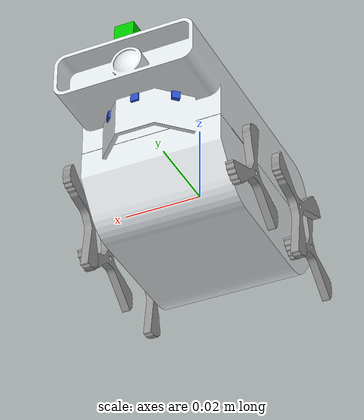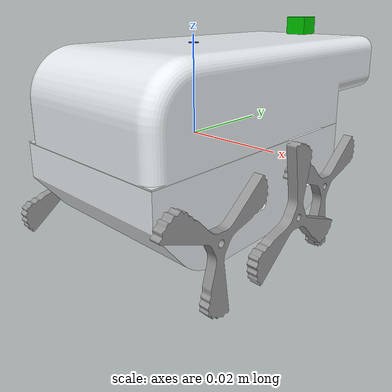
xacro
<?xml version='1.0'?>

<robot name="mybot" xmlns:xacro="http://www.ros.org/wiki/xacro">
  <!-- Base Box -->
  <xacro:property name="base_name" value="chassis"/>
  <xacro:property name="base_box_mass" value="0.58"/>
	<xacro:property name="base_box_x" value="0.036"/>
  <xacro:property name="base_box_y" value="0.054"/>
  <xacro:property name="base_box_z" value="0.018"/>

  <xacro:property name="cameraSize" value="0.005"/>
  <xacro:property name="cameraMass" value="0.01"/>

  <xacro:property name="wheel_radius" value="0.014"/>
  <xacro:property name="wheel_width" value="0.002"/>
  <xacro:property name="wheel_mass" value="0.008"/>

  <xacro:include filename="$(find mybot_description)/urdf/mybot.gazebo" />
  <xacro:include filename="$(find mybot_description)/urdf/materials.xacro" />
  <xacro:include filename="$(find mybot_description)/urdf/macros.xacro" />

  <link name="dummy">
  </link>
  <link name="chassis">
    <inertial>
      <mass value="1.0"/>
      <origin rpy="0 0 0" xyz="0 0 -0.012"/>
      <cylinder_y_inertia m="1.0" r="0.01" h="0.04"/>
    </inertial>
     <collision>
      <origin xyz="0 0 -0.011" rpy="0 0 0" />
      <geometry> <box size = "0.03 0.04 0.004"/>
      </geometry>
    </collision>
    <visual>
      <geometry> <mesh filename="package://mybot_description/meshes/chassis.STL"/>
      </geometry>
      <material name="">
        <color rgba="0.898039215686275 0.917647058823529 0.929411764705882 1" />
      </material>
    </visual>

  </link>
  <joint name="dummy_joint" type="fixed">
    <parent link="dummy" />
    <child link="chassis" />
  </joint>
  <link name="frontleft_wheel">
      <inertial>
        <mass value="0.05"/>
        <origin rpy="0 0 0" xyz="0 0 0"/>
        <cylinder_x_inertia m="0.05" r="0.014" h="0.002"/>
      </inertial>
      <collision>
        <origin rpy="0 0 0" xyz="0 0 0"/>
        <geometry> <mesh filename="package://mybot_description/meshes/wheel.STL"/>
        </geometry>

      </collision>
      <visual>
        <origin rpy="0 0 0" xyz="0 0 0"/>
        <geometry> <mesh filename="package://mybot_description/meshes/wheel.STL"/>
        </geometry>

      </visual>
  </link>
  <link name="frontright_wheel">
      <inertial>
        <mass value="0.05"/>
        <origin rpy="3.1415926535897931 0 0" xyz="0 0 0"/>
        <cylinder_x_inertia m="0.05" r="0.014" h="0.002"/>
      </inertial>
      <collision>
        <origin rpy="3.1415926535897931 0 0" xyz="0 0 0"/>
        <geometry> <mesh filename="package://mybot_description/meshes/wheel.STL"/>
        </geometry>
      </collision>
      <visual>
        <origin rpy="3.1415926535897931 0 0" xyz="0 0 0"/>
        <geometry> <mesh filename="package://mybot_description/meshes/wheel.STL"/>
        </geometry>
      </visual>
  </link>
  <link name="centerleft_wheel">
      <inertial>
        <mass value="0.05"/>
        <origin rpy="3.1415926535897931 0 0" xyz="0 0 0"/>
        <cylinder_x_inertia m="0.05" r="0.014" h="0.002"/>
      </inertial>
      <collision>
        <origin rpy="3.1415926535897931 0 0" xyz="0 0 0"/>
        <geometry> <mesh filename="package://mybot_description/meshes/wheel.STL"/>
        </geometry>
      </collision>
      <visual>
        <origin rpy="3.1415926535897931 0 0" xyz="0 0 0"/>
        <geometry> <mesh filename="package://mybot_description/meshes/wheel.STL"/>
        </geometry>
      </visual>
  </link>
  <link name="centerright_wheel">
      <inertial>
        <mass value="0.05"/>
        <origin rpy="0 0 0" xyz="0 0 0"/>
        <cylinder_x_inertia m="0.05" r="0.014" h="0.002"/>
      </inertial>
      <collision>
        <origin rpy="0 0 0" xyz="0 0 0"/>
        <geometry> <mesh filename="package://mybot_description/meshes/wheel.STL"/>
        </geometry>
      </collision>
      <visual>
        <origin rpy="0 0 0" xyz="0 0 0"/>
        <geometry> <mesh filename="package://mybot_description/meshes/wheel.STL"/>
        </geometry>
      </visual>
  </link>
  <link name="backleft_wheel">
      <inertial>
        <mass value="0.05"/>
        <origin rpy="0 0 0" xyz="0 0 0"/>
        <cylinder_x_inertia m="0.05" r="0.014" h="0.002"/>
      </inertial>
      <collision>
        <origin rpy="0 0 0" xyz="0 0 0"/>
        <geometry> <mesh filename="package://mybot_description/meshes/wheel.STL"/>
        </geometry>
      </collision>
      <visual>
        <origin rpy="0 0 0" xyz="0 0 0"/>
        <geometry> <mesh filename="package://mybot_description/meshes/wheel.STL"/>
        </geometry>
      </visual>
  </link>
  <link name="backright_wheel">
      <inertial>
        <mass value="0.05"/>
        <origin rpy="3.1415926535897931 0 0" xyz="0 0 0"/>
        <cylinder_x_inertia m="0.05" r="0.014" h="0.002"/>
      </inertial>
      <collision>
        <origin rpy="3.1415926535897931 0 0" xyz="0 0 0"/>
        <geometry> <mesh filename="package://mybot_description/meshes/wheel.STL"/>
        </geometry>
      </collision>
      <visual>
        <origin rpy="3.1415926535897931 0 0" xyz="0 0 0"/>
        <geometry> <mesh filename="package://mybot_description/meshes/wheel.STL"/>
        </geometry>
      </visual>
  </link>
  <!-- ======================================================END OF LINKS====================================== -->
 <!--END OF 4 bar linkage for right wheel constraints-->
  <!-- ========================================================SENSORS================================================ -->
  <link name="ir_left">
   <visual>
      <origin xyz="0 0 0" rpy="0 0 0"/>
      <geometry> <box size="0.002 0.002 0.002"/>
      </geometry>
   </visual>
  </link>
  <gazebo reference="ir_left">
      <material>Gazebo/Blue</material>
  </gazebo>
  <joint name="ir_left" type="fixed">
    <axis xyz="0 0 0" />
    <origin rpy="0 0 2.2689" xyz="-0.0085 0.0314 0.005" />
    <parent link="chassis"/>
    <child link="ir_left"/>
  </joint>
  <!-- =====================================right=================================== -->
  <link name="ir_right">
   <visual>
      <origin xyz="0 0 0" rpy="0 0 0"/>
      <geometry> <box size="0.001 0.002 0.002"/>
      </geometry>
   </visual>
  </link>
  <gazebo reference="ir_right">
      <material>Gazebo/Blue</material>
  </gazebo>
  <joint name="ir_right" type="fixed">
    <axis xyz="0 0 0" />
    <origin rpy="0 0 0.6981" xyz="0.0085 0.0314 0.005" />
    <parent link="chassis"/>
    <child link="ir_right"/>
  </joint>
  <!-- ==========================================front================================ -->
  <link name="ir_front">
   <visual>
      <origin xyz="0 0 0" rpy="0 0 -1.5708"/>
      <geometry> <box size="0.002 0.001 0.002"/>
      </geometry>
   </visual>
  </link>
  <gazebo reference="ir_front">
      <material>Gazebo/Blue</material>
  </gazebo>
  <joint name="ir_front" type="fixed">
    <axis xyz="0 0 0" />
    <origin rpy="0 0 1.5708" xyz="0 0.035 0.005" />
    <parent link="chassis"/>
    <child link="ir_front"/>
  </joint>
<!-- ==================================== IMU ================================= -->
  <link name="imu_link">
    <visual>
      <origin xyz="0 0 0" rpy="0 0 0"/>
      <geometry> <cylinder length="0.001" radius="0.001"/>
      </geometry>
    </visual>
    <collision>
      <geometry> <cylinder length="0.001" radius="0.001"/>
      </geometry>
    </collision>
  </link>
  <gazebo reference="imu_link">
      <material>Gazebo/Blue</material>
  </gazebo>
  <joint name="IMU" type="fixed">
    <origin
      xyz="0 0 0.018" rpy="0 0 0" />
    <parent link="chassis" />
    <child link="imu_link" />
    <axis xyz="0 0 0" />
  </joint>
<!-- ===================================== CAMERA ============================= -->
  <link name="camera_link">
   <collision>
      <origin xyz="0 0 0" rpy="0 0 0"/>
      <geometry>
        <box size="${cameraSize} ${cameraSize} ${cameraSize}"/>
      </geometry>
    </collision>
    <visual>
      <origin xyz="0 0 0" rpy="0 0 0"/>
      <geometry>
        <box size="${cameraSize} ${cameraSize} ${cameraSize}"/>
      </geometry>
      <material name="green"/>
    </visual>
    <inertial>
      <mass value="${cameraMass}" />
      <origin xyz="0 0 0" rpy="0 0 0"/>
      <box_inertia m="${cameraMass}" x="${cameraSize}" y="${cameraSize}" z="${cameraSize}" />
      <inertia ixx="1e-6" ixy="0" ixz="0" iyy="1e-6" iyz="0" izz="1e-6" />
    </inertial>
  </link>
  <gazebo reference="camera_link">
      <material>Gazebo/Red</material>
  </gazebo>

  <!--===========================JOINTS=======================-->

  <joint name="FL_axis" type="continuous">
      <origin rpy="0 0 0" xyz="-0.021 0.0164 -0.011"/>
      <child link="frontleft_wheel"/>
      <parent link="chassis"/>
      <axis xyz="-1 0 0"/>
      <limit effort="100.0" velocity="10.0"/>
      <dynamics damping="0.1" friction="0.1"/>
    </joint>
  <joint name="FR_axis" type="continuous">
      <origin rpy="0 0 0" xyz="0.021 0.0164 -0.011"/>
      <child link="frontright_wheel"/>
      <parent link="chassis"/>
      <axis xyz="-1 0 0"/>
      <limit effort="100.0" velocity="10.0"/>
      <dynamics damping="0.1" friction="0.1"/>
    </joint>
  <joint name="CL_axis" type="continuous">
      <origin rpy="0 0 0" xyz="-0.025 0 -0.011"/>
      <child link="centerleft_wheel"/>
      <parent link="chassis"/>
      <axis xyz="-1 0 0"/>
      <limit effort="100.0" velocity="10.0"/>
      <dynamics damping="0.1" friction="0.1"/>
    </joint>
  <joint name="CR_axis" type="continuous">
      <origin rpy="0 0 0" xyz="0.025 0 -0.011"/>
      <child link="centerright_wheel"/>
      <parent link="chassis"/>
      <axis xyz="-1 0 0"/>
      <limit effort="100.0" velocity="10.0"/>
      <dynamics damping="0.1" friction="0.1"/>
    </joint>
  <joint name="BL_axis" type="continuous">
      <origin rpy="0 0 0" xyz="-0.021 -0.0164 -0.011"/>
      <child link="backleft_wheel"/>
      <parent link="chassis"/>
      <axis xyz="-1 0 0"/>
      <limit effort="100.0" velocity="10.0"/>
      <dynamics damping="0.1" friction="0.1"/>
    </joint>
  <joint name="BR_axis" type="continuous">
      <origin rpy="0 0 0" xyz="0.021 -0.0164 -0.011"/>
      <child link="backright_wheel"/>
      <parent link="chassis"/>
      <axis xyz="-1 0 0"/>
      <limit effort="100.0" velocity="10.0"/>
      <dynamics damping="0.1" friction="0.1"/>
    </joint>
  <joint name="cam_joint" type="continuous">
      <origin xyz="0 0.039 0.020" rpy="0 0 1.5708"/>
      <parent link="chassis"/>
      <child link="camera_link"/>
      <limit effort="5.0" velocity="1.0"/>
      <dynamics damping="0.2" friction="0.2"/>
      <axis xyz="0 0 -1"/>
    </joint>

  <!-- ================================================Velocity Controller ===========================================-->
  <transmission name="tran1">
    <type>transmission_interface/SimpleTransmission</type>
    <joint name="FL_axis">
      <hardwareInterface>hardware_interface/VelocityJointInterface</hardwareInterface>
    </joint>
    <actuator name="motor1">
      <hardwareInterface>hardware_interface/VelocityJointInterface</hardwareInterface>
      <mechanicalReduction>1</mechanicalReduction>
    </actuator>
  </transmission>

  <transmission name="tran2">
    <type>transmission_interface/SimpleTransmission</type>
    <joint name="FR_axis">
      <hardwareInterface>hardware_interface/VelocityJointInterface</hardwareInterface>
    </joint>
    <actuator name="motor2">
      <hardwareInterface>hardware_interface/VelocityJointInterface</hardwareInterface>
      <mechanicalReduction>1</mechanicalReduction>
    </actuator>
  </transmission>

  <transmission name="tran3">
    <type>transmission_interface/SimpleTransmission</type>
    <joint name="CL_axis">
      <hardwareInterface>hardware_interface/VelocityJointInterface</hardwareInterface>
    </joint>
    <actuator name="motor3">
      <hardwareInterface>hardware_interface/VelocityJointInterface</hardwareInterface>
      <mechanicalReduction>1</mechanicalReduction>
    </actuator>
  </transmission>

  <transmission name="tran4">
    <type>transmission_interface/SimpleTransmission</type>
    <joint name="CR_axis">
      <hardwareInterface>hardware_interface/VelocityJointInterface</hardwareInterface>
    </joint>
    <actuator name="motor4">
      <hardwareInterface>hardware_interface/VelocityJointInterface</hardwareInterface>
      <mechanicalReduction>1</mechanicalReduction>
    </actuator>
  </transmission>

  <transmission name="tran5">
    <type>transmission_interface/SimpleTransmission</type>
    <joint name="BL_axis">
      <hardwareInterface>hardware_interface/VelocityJointInterface</hardwareInterface>
    </joint>
    <actuator name="motor5">
      <hardwareInterface>hardware_interface/VelocityJointInterface</hardwareInterface>
      <mechanicalReduction>1</mechanicalReduction>
    </actuator>
  </transmission>

  <transmission name="tran6">
    <type>transmission_interface/SimpleTransmission</type>
    <joint name="BR_axis">
      <hardwareInterface>hardware_interface/VelocityJointInterface</hardwareInterface>
    </joint>
    <actuator name="motor6">
      <hardwareInterface>hardware_interface/VelocityJointInterface</hardwareInterface>
      <mechanicalReduction>1</mechanicalReduction>
    </actuator>
  </transmission>

  <!-- for rotating camera -->
  <transmission name="tran7">
    <type>transmission_interface/SimpleTransmission</type>
    <joint name="cam_joint">
      <hardwareInterface>hardware_interface/PositionJointInterface</hardwareInterface>
    </joint>
    <actuator name="motor7">
      <hardwareInterface>hardware_interface/PositionJointInterface</hardwareInterface>
      <mechanicalReduction>1</mechanicalReduction>
    </actuator>
  </transmission>

</robot>

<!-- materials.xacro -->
<robot>

  <material name="black">
    <color rgba="0.0 0.0 0.0 1.0"/>
  </material>

  <material name="blue">
    <color rgba="0.0 0.0 0.8 1.0"/>
  </material>

  <material name="green">
    <color rgba="0.0 0.8 0.0 1.0"/>
  </material>

  <material name="grey">
    <color rgba="0.2 0.2 0.2 1.0"/>
  </material>

  <material name="orange">
    <color rgba="${255/255} ${108/255} ${10/255} 1.0"/>
  </material>

  <material name="aluminum">
    <color rgba="${132/255} ${135/255} ${137/255} 1.0"/>
  </material>

  <material name="brown">
    <color rgba="${222/255} ${207/255} ${195/255} 1.0"/>
  </material>

  <material name="red">
    <color rgba="0.8 0.0 0.0 1.0"/>
  </material>

  <material name="white">
    <color rgba="1.0 1.0 1.0 1.0"/>
  </material>

</robot>

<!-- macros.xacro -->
<robot>
  <macro name="cylinder_inertia" params="m r h">
    <inertia  ixx="${m*(3*r*r+h*h)/12}" ixy = "0" ixz = "0"
              iyy="${m*(3*r*r+h*h)/12}" iyz = "0"
              izz="${m*r*r/2}"
    />
  </macro>

  <macro name="cylinder_y_inertia" params="m r h">
    <inertia  ixx= "${m*(3*r*r+h*h)/12}" ixy = "0" ixz = "0"
              iyy= "${m*r*r/2}" iyz = "0"
              izz= "${m*(3*r*r+h*h)/12}"
    />
  </macro>

  <macro name="cylinder_x_inertia" params="m r h">
    <inertia  ixx= "${m*r*r/2}" ixy = "0" ixz = "0"
              iyy= "${m*(3*r*r+h*h)/12}"  iyz = "0"
              izz= "${m*(3*r*r+h*h)/12}"
    />
  </macro>

  <macro name="box_inertia" params="m x y z">
    <inertia  ixx="${m*(y*y+z*z)/12}" ixy = "0" ixz = "0"
              iyy="${m*(x*x+z*z)/12}" iyz = "0"
              izz="${m*(x*x+z*z)/12}"
    />
  </macro>

  <macro name="sphere_inertia" params="m r">
    <inertia  ixx="${2*m*r*r/5}" ixy = "0" ixz = "0"
              iyy="${2*m*r*r/5}" iyz = "0"
              izz="${2*m*r*r/5}"
    />
  </macro>

  <macro name="wheel" params="lr tY">

    <link name="${lr}_wheel">
      <collision>
        <origin xyz="0 0 0" rpy="0 ${PI/2} ${PI/2}" />
        <geometry>
          <cylinder length="${wheelWidth}" radius="${wheelRadius}"/>
        </geometry>
      </collision>

      <visual>
        <origin xyz="0 0 0" rpy="0 ${PI/2} ${PI/2}" />
        <geometry>
          <cylinder length="${wheelWidth}" radius="${wheelRadius}"/>
        </geometry>
        <material name="black"/>
      </visual>

      <inertial>
        <origin xyz="0 0 0" rpy="0 ${PI/2} ${PI/2}" />
        <mass value="${wheelMass}"/>
        <cylinder_inertia m="${wheelMass}" r="${wheelRadius}" h="${wheelWidth}"/>
      </inertial>
    </link>

    <gazebo reference="${lr}_wheel">
      <mu1 value="1.0"/>
      <mu2 value="1.0"/>
      <kp  value="10000000.0" />
      <kd  value="1.0" />
      <fdir1 value="1 0 0"/>
      <material>Gazebo/Black</material>
    </gazebo>

    <joint name="${lr}_wheel_hinge" type="continuous">
      <parent link="chassis"/>
      <child link="${lr}_wheel"/>
    <origin xyz="${-wheelPos+chassisLength/2} ${tY*wheelWidth/2+tY*chassisWidth/2} ${wheelRadius}" rpy="0 0 0" />
      <axis xyz="0 1 0" rpy="0 0 0" />
      <limit effort="10000" velocity="10000"/>
      <joint_properties damping="0.0" friction="0.0"/>
    </joint>

    <transmission name="${lr}_trans">
      <type>transmission_interface/SimpleTransmission</type>
      <joint name="${lr}_wheel_hinge">
        <hardwareInterface>EffortJointInterface</hardwareInterface>
      </joint>
      <actuator name="${lr}Motor">
        <hardwareInterface>EffortJointInterface</hardwareInterface>
        <mechanicalReduction>10</mechanicalReduction>
      </actuator>
    </transmission>

  </macro>

</robot>
